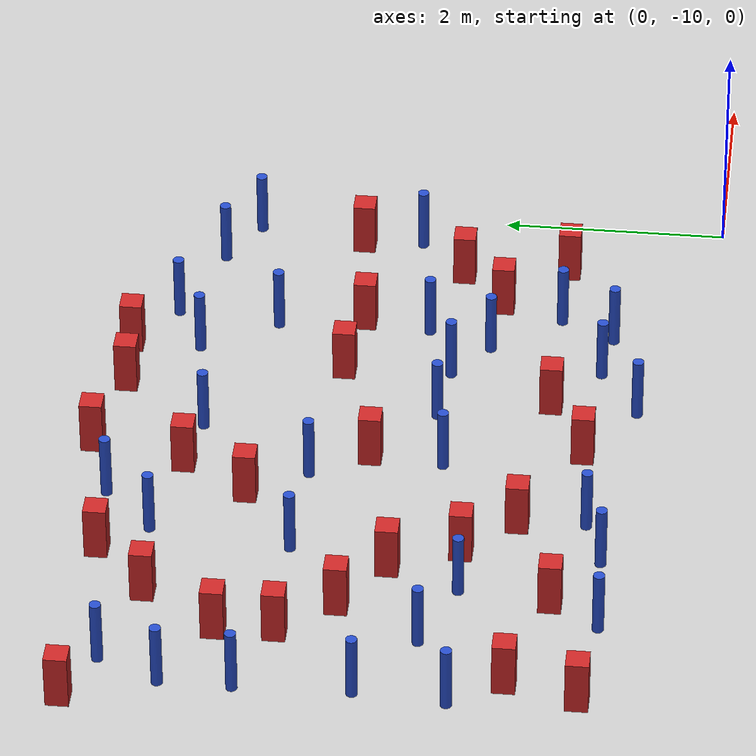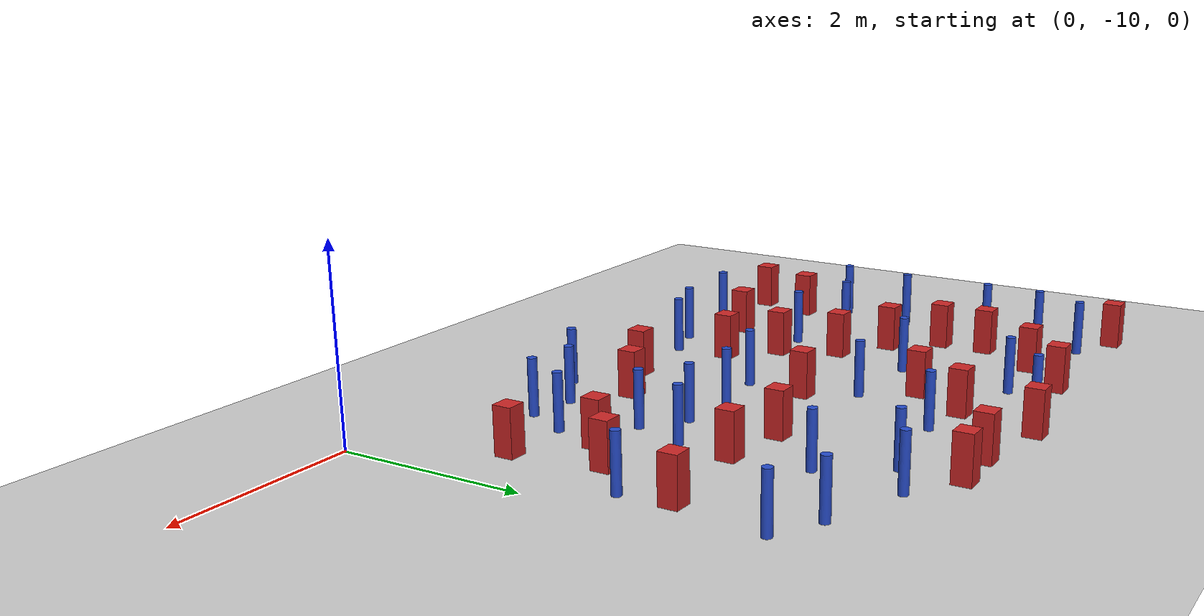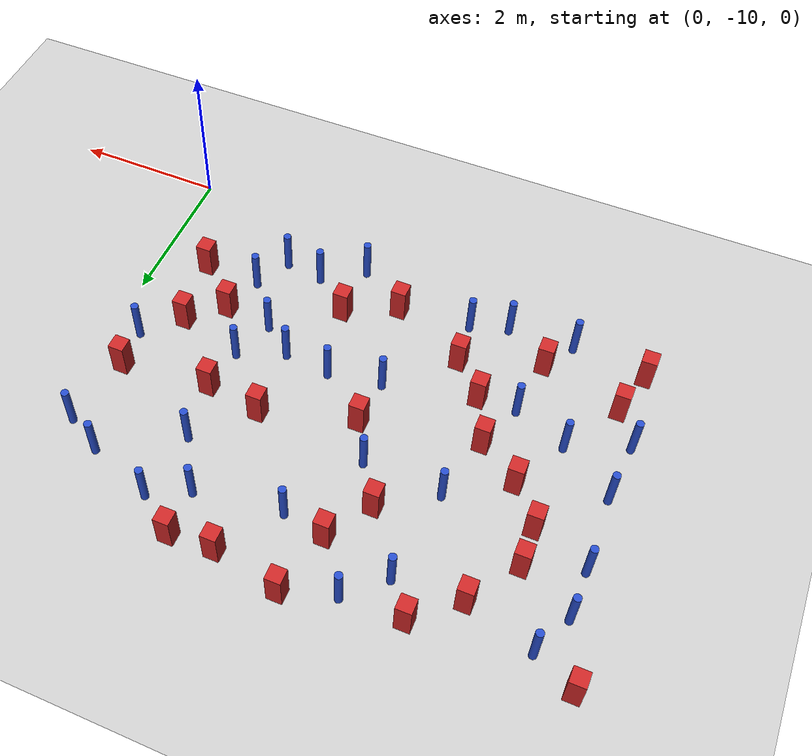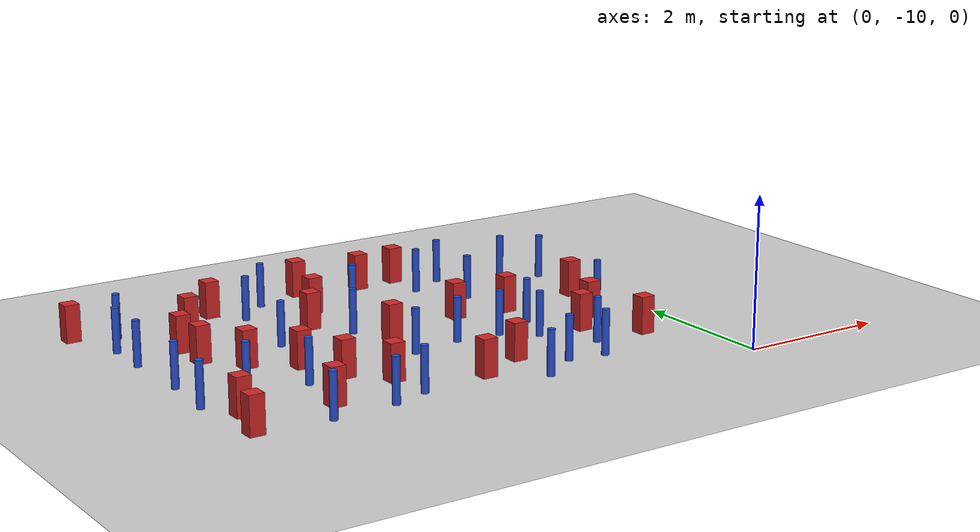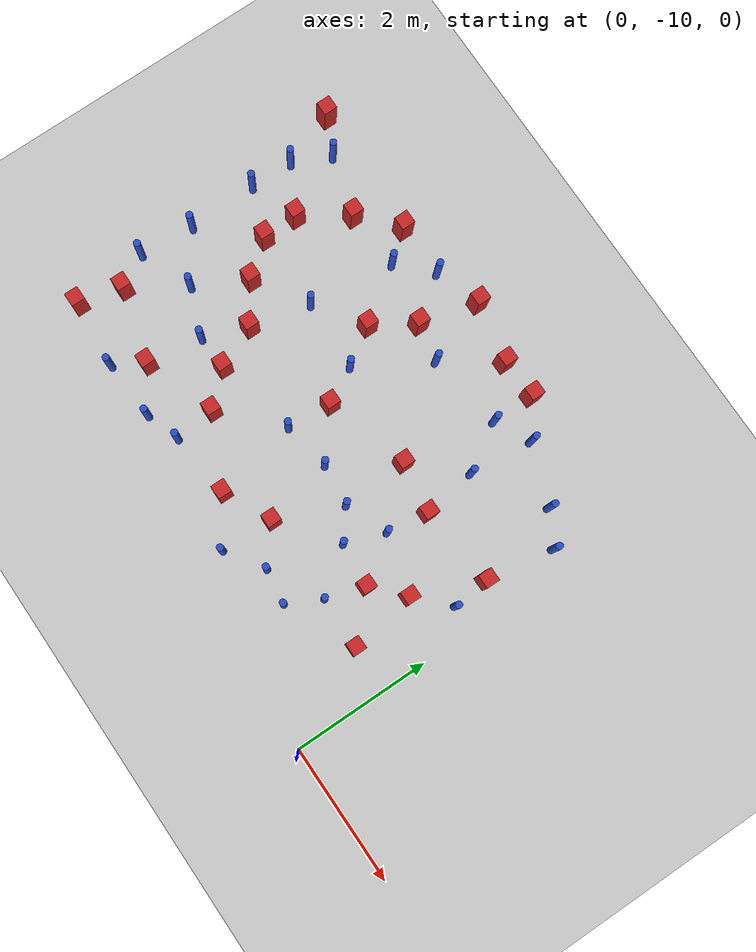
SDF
<sdf version="1.6">
 <world name="default">
  <model name="ground_plane">
   <static>1</static>
   <link name="link">
    <collision name="collision">
     <geometry><plane><normal>0 0 1</normal><size>100 100</size></plane></geometry>
     <surface><friction><ode><mu>100</mu><mu2>50</mu2></ode></friction></surface>
    </collision>
    <visual name="visual">
     <cast_shadows>0</cast_shadows>
     <geometry><plane><normal>0 0 1</normal><size>100 100</size></plane></geometry>
     <material>
      <ambient>1.0 1.0 1.0 1.0</ambient>
      <diffuse>0.8 0.8 0.8 1.0</diffuse>
      <specular>0.01 0.01 0.01 1.000000</specular>
     </material>
    </visual>
   </link>
  </model>
  <model name="pole_obstacle6">
   <static>true</static>
   <pose>-6.67259514434 -7.26067881693 -9.47619616065e-06 5.49618799737e-07 2.36310414037e-07 -1.55090534814e-07</pose>
   <link name="link">
    <pose>0 0 0.3 0 -0 0</pose>
    <inertial>
     <mass>1</mass>
     <inertia><ixx>0.145833</ixx><ixy>0</ixy><ixz>0</ixz><iyy>0.145833</iyy><iyz>0</iyz><izz>0.125</izz></inertia>
    </inertial>
    <collision name="collision">
     <geometry><cylinder><radius>0.05</radius><length>.6</length></cylinder></geometry>
    </collision>
    <visual name="visual">
     <geometry><cylinder><radius>0.05</radius><length>.6</length></cylinder></geometry>
     <material>
      <script><name>Gazebo/Blue</name><uri>file://media/materials/scripts/gazebo.material</uri></script>
     </material>
    </visual>
   </link>
  </model>
  <model name="pole_obstacle14">
   <static>true</static>
   <pose>-3.8241816231 -6.57870441481 -9.47619616065e-06 5.49618799738e-07 2.3631041406e-07 -1.55090534801e-07</pose>
   <link name="link">
    <pose>0 0 0.3 0 -0 0</pose>
    <inertial>
     <mass>1</mass>
     <inertia><ixx>0.145833</ixx><ixy>0</ixy><ixz>0</ixz><iyy>0.145833</iyy><iyz>0</iyz><izz>0.125</izz></inertia>
    </inertial>
    <collision name="collision">
     <geometry><cylinder><radius>0.05</radius><length>.6</length></cylinder></geometry>
    </collision>
    <visual name="visual">
     <geometry><cylinder><radius>0.05</radius><length>.6</length></cylinder></geometry>
     <material>
      <script><name>Gazebo/Blue</name><uri>file://media/materials/scripts/gazebo.material</uri></script>
     </material>
    </visual>
   </link>
  </model>
  <model name="pole_obstacle17">
   <static>true</static>
   <pose>-2.89915703418 -7.61839342395 -9.47619616065e-06 5.49618799738e-07 2.3631041406e-07 -1.55090534801e-07</pose>
   <link name="link">
    <pose>0 0 0.3 0 -0 0</pose>
    <inertial>
     <mass>1</mass>
     <inertia><ixx>0.145833</ixx><ixy>0</ixy><ixz>0</ixz><iyy>0.145833</iyy><iyz>0</iyz><izz>0.125</izz></inertia>
    </inertial>
    <collision name="collision">
     <geometry><cylinder><radius>0.05</radius><length>.6</length></cylinder></geometry>
    </collision>
    <visual name="visual">
     <geometry><cylinder><radius>0.05</radius><length>.6</length></cylinder></geometry>
     <material>
      <script><name>Gazebo/Blue</name><uri>file://media/materials/scripts/gazebo.material</uri></script>
     </material>
    </visual>
   </link>
  </model>
  <model name="pole_obstacle18">
   <static>true</static>
   <pose>-1.88941581441 -8.00734573347 -9.47619616065e-06 5.49618799737e-07 2.36310414013e-07 -1.55090534827e-07</pose>
   <link name="link">
    <pose>0 0 0.3 0 -0 0</pose>
    <inertial>
     <mass>1</mass>
     <inertia><ixx>0.145833</ixx><ixy>0</ixy><ixz>0</ixz><iyy>0.145833</iyy><iyz>0</iyz><izz>0.125</izz></inertia>
    </inertial>
    <collision name="collision">
     <geometry><cylinder><radius>0.05</radius><length>.6</length></cylinder></geometry>
    </collision>
    <visual name="visual">
     <geometry><cylinder><radius>0.05</radius><length>.6</length></cylinder></geometry>
     <material>
      <script><name>Gazebo/Blue</name><uri>file://media/materials/scripts/gazebo.material</uri></script>
     </material>
    </visual>
   </link>
  </model>
  <model name="square_post_obstacle14">
   <static>true</static>
   <pose>-3.79969899994 -5.47308644981 -6.11067671241e-07 -5.50515727128e-06 -8.79689657224e-07 2.37013304536e-05</pose>
   <link name="link">
    <pose>0 0 0.25 0 -0 0</pose>
    <inertial>
     <mass>100</mass>
     <inertia>
      <ixx>0.166667</ixx>
      <ixy>0</ixy>
      <ixz>0</ixz>
      <iyy>0.166667</iyy>
      <iyz>0</iyz>
      <izz>0.166667</izz>
     </inertia>
    </inertial>
    <collision name="collision"><geometry><box><size>.2 .2 .5</size></box></geometry></collision>
    <visual name="visual">
     <geometry><box><size>.2 .2 .5</size></box></geometry>
     <material>
      <script><name>Gazebo/Red</name><uri>file://media/materials/scripts/gazebo.material</uri></script>
     </material>
    </visual>
   </link>
  </model>
  <model name="pole_obstacle19">
   <static>true</static>
   <pose>-4.24836645206 -4.84858054004 -9.47619616065e-06 5.49618799737e-07 2.36310414037e-07 -1.55090534814e-07</pose>
   <link name="link">
    <pose>0 0 0.3 0 -0 0</pose>
    <inertial>
     <mass>1</mass>
     <inertia><ixx>0.145833</ixx><ixy>0</ixy><ixz>0</ixz><iyy>0.145833</iyy><iyz>0</iyz><izz>0.125</izz></inertia>
    </inertial>
    <collision name="collision">
     <geometry><cylinder><radius>0.05</radius><length>.6</length></cylinder></geometry>
    </collision>
    <visual name="visual">
     <geometry><cylinder><radius>0.05</radius><length>.6</length></cylinder></geometry>
     <material>
      <script><name>Gazebo/Blue</name><uri>file://media/materials/scripts/gazebo.material</uri></script>
     </material>
    </visual>
   </link>
  </model>
  <model name="pole_obstacle20">
   <static>true</static>
   <pose>-5.65267209662 -9.24675906609 -9.47619616065e-06 5.49618799737e-07 2.36310414065e-07 -1.55090534796e-07</pose>
   <link name="link">
    <pose>0 0 0.3 0 -0 0</pose>
    <inertial>
     <mass>1</mass>
     <inertia><ixx>0.145833</ixx><ixy>0</ixy><ixz>0</ixz><iyy>0.145833</iyy><iyz>0</iyz><izz>0.125</izz></inertia>
    </inertial>
    <collision name="collision">
     <geometry><cylinder><radius>0.05</radius><length>.6</length></cylinder></geometry>
    </collision>
    <visual name="visual">
     <geometry><cylinder><radius>0.05</radius><length>.6</length></cylinder></geometry>
     <material>
      <script><name>Gazebo/Blue</name><uri>file://media/materials/scripts/gazebo.material</uri></script>
     </material>
    </visual>
   </link>
  </model>
  <model name="pole_obstacle24">
   <static>true</static>
   <pose>-1.66826216013 -9.10371279603 -9.47619616065e-06 5.49618799737e-07 2.36310414046e-07 -1.55090534809e-07</pose>
   <link name="link">
    <pose>0 0 0.3 0 -0 0</pose>
    <inertial>
     <mass>1</mass>
     <inertia><ixx>0.145833</ixx><ixy>0</ixy><ixz>0</ixz><iyy>0.145833</iyy><iyz>0</iyz><izz>0.125</izz></inertia>
    </inertial>
    <collision name="collision">
     <geometry><cylinder><radius>0.05</radius><length>.6</length></cylinder></geometry>
    </collision>
    <visual name="visual">
     <geometry><cylinder><radius>0.05</radius><length>.6</length></cylinder></geometry>
     <material>
      <script><name>Gazebo/Blue</name><uri>file://media/materials/scripts/gazebo.material</uri></script>
     </material>
    </visual>
   </link>
  </model>
  <model name="pole_obstacle26">
   <static>true</static>
   <pose>-3.23937369056 -5.57305157557 -9.47619616065e-06 5.49618799738e-07 2.3631041406e-07 -1.55090534801e-07</pose>
   <link name="link">
    <pose>0 0 0.3 0 -0 0</pose>
    <inertial>
     <mass>1</mass>
     <inertia><ixx>0.145833</ixx><ixy>0</ixy><ixz>0</ixz><iyy>0.145833</iyy><iyz>0</iyz><izz>0.125</izz></inertia>
    </inertial>
    <collision name="collision">
     <geometry><cylinder><radius>0.05</radius><length>.6</length></cylinder></geometry>
    </collision>
    <visual name="visual">
     <geometry><cylinder><radius>0.05</radius><length>.6</length></cylinder></geometry>
     <material>
      <script><name>Gazebo/Blue</name><uri>file://media/materials/scripts/gazebo.material</uri></script>
     </material>
    </visual>
   </link>
  </model>
  <model name="square_post_obstacle30">
   <static>true</static>
   <pose>-3.35750983752 -8.94683915711 -6.11067671241e-07 -5.50515727128e-06 -8.79689657224e-07 2.37013304536e-05</pose>
   <link name="link">
    <pose>0 0 0.25 0 -0 0</pose>
    <inertial>
     <mass>100</mass>
     <inertia>
      <ixx>0.166667</ixx>
      <ixy>0</ixy>
      <ixz>0</ixz>
      <iyy>0.166667</iyy>
      <iyz>0</iyz>
      <izz>0.166667</izz>
     </inertia>
    </inertial>
    <collision name="collision"><geometry><box><size>.2 .2 .5</size></box></geometry></collision>
    <visual name="visual">
     <geometry><box><size>.2 .2 .5</size></box></geometry>
     <material>
      <script><name>Gazebo/Red</name><uri>file://media/materials/scripts/gazebo.material</uri></script>
     </material>
    </visual>
   </link>
  </model>
  <model name="pole_obstacle38">
   <static>true</static>
   <pose>-1.71604727586 -6.06814632395 -9.47619616065e-06 5.49618799737e-07 2.36310414061e-07 -1.550905348e-07</pose>
   <link name="link">
    <pose>0 0 0.3 0 -0 0</pose>
    <inertial>
     <mass>1</mass>
     <inertia><ixx>0.145833</ixx><ixy>0</ixy><ixz>0</ixz><iyy>0.145833</iyy><iyz>0</iyz><izz>0.125</izz></inertia>
    </inertial>
    <collision name="collision">
     <geometry><cylinder><radius>0.05</radius><length>.6</length></cylinder></geometry>
    </collision>
    <visual name="visual">
     <geometry><cylinder><radius>0.05</radius><length>.6</length></cylinder></geometry>
     <material>
      <script><name>Gazebo/Blue</name><uri>file://media/materials/scripts/gazebo.material</uri></script>
     </material>
    </visual>
   </link>
  </model>
  <model name="pole_obstacle40">
   <static>true</static>
   <pose>-1.62080458927 -5.14639757813 -9.47619616065e-06 5.49618799737e-07 2.36310414061e-07 -1.550905348e-07</pose>
   <link name="link">
    <pose>0 0 0.3 0 -0 0</pose>
    <inertial>
     <mass>1</mass>
     <inertia><ixx>0.145833</ixx><ixy>0</ixy><ixz>0</ixz><iyy>0.145833</iyy><iyz>0</iyz><izz>0.125</izz></inertia>
    </inertial>
    <collision name="collision">
     <geometry><cylinder><radius>0.05</radius><length>.6</length></cylinder></geometry>
    </collision>
    <visual name="visual">
     <geometry><cylinder><radius>0.05</radius><length>.6</length></cylinder></geometry>
     <material>
      <script><name>Gazebo/Blue</name><uri>file://media/materials/scripts/gazebo.material</uri></script>
     </material>
    </visual>
   </link>
  </model>
  <model name="pole_obstacle51">
   <static>true</static>
   <pose>-2.12303213821 -5.40189653144 -9.47619616065e-06 5.49618799738e-07 2.3631041406e-07 -1.55090534801e-07</pose>
   <link name="link">
    <pose>0 0 0.3 0 -0 0</pose>
    <inertial>
     <mass>1</mass>
     <inertia><ixx>0.145833</ixx><ixy>0</ixy><ixz>0</ixz><iyy>0.145833</iyy><iyz>0</iyz><izz>0.125</izz></inertia>
    </inertial>
    <collision name="collision">
     <geometry><cylinder><radius>0.05</radius><length>.6</length></cylinder></geometry>
    </collision>
    <visual name="visual">
     <geometry><cylinder><radius>0.05</radius><length>.6</length></cylinder></geometry>
     <material>
      <script><name>Gazebo/Blue</name><uri>file://media/materials/scripts/gazebo.material</uri></script>
     </material>
    </visual>
   </link>
  </model>
  <model name="square_post_obstacle45">
   <static>true</static>
   <pose>-2.34434877915 -6.73400630385 -6.11067671241e-07 -5.50515727128e-06 -8.79689657224e-07 2.37013304536e-05</pose>
   <link name="link">
    <pose>0 0 0.25 0 -0 0</pose>
    <inertial>
     <mass>100</mass>
     <inertia>
      <ixx>0.166667</ixx>
      <ixy>0</ixy>
      <ixz>0</ixz>
      <iyy>0.166667</iyy>
      <iyz>0</iyz>
      <izz>0.166667</izz>
     </inertia>
    </inertial>
    <collision name="collision"><geometry><box><size>.2 .2 .5</size></box></geometry></collision>
    <visual name="visual">
     <geometry><box><size>.2 .2 .5</size></box></geometry>
     <material>
      <script><name>Gazebo/Red</name><uri>file://media/materials/scripts/gazebo.material</uri></script>
     </material>
    </visual>
   </link>
  </model>
  <model name="square_post_obstacle53">
   <static>true</static>
   <pose>-0.687866372086 -8.63134660337 -6.11067671241e-07 -5.50515727128e-06 -8.79689657224e-07 2.37013304536e-05</pose>
   <link name="link">
    <pose>0 0 0.25 0 -0 0</pose>
    <inertial>
     <mass>100</mass>
     <inertia>
      <ixx>0.166667</ixx>
      <ixy>0</ixy>
      <ixz>0</ixz>
      <iyy>0.166667</iyy>
      <iyz>0</iyz>
      <izz>0.166667</izz>
     </inertia>
    </inertial>
    <collision name="collision"><geometry><box><size>.2 .2 .5</size></box></geometry></collision>
    <visual name="visual">
     <geometry><box><size>.2 .2 .5</size></box></geometry>
     <material>
      <script><name>Gazebo/Red</name><uri>file://media/materials/scripts/gazebo.material</uri></script>
     </material>
    </visual>
   </link>
  </model>
  <model name="square_post_obstacle54">
   <static>true</static>
   <pose>-2.13394723603 -4.78786241825 -6.11067671241e-07 -5.50515727128e-06 -8.79689657224e-07 2.37013304536e-05</pose>
   <link name="link">
    <pose>0 0 0.25 0 -0 0</pose>
    <inertial>
     <mass>100</mass>
     <inertia>
      <ixx>0.166667</ixx>
      <ixy>0</ixy>
      <ixz>0</ixz>
      <iyy>0.166667</iyy>
      <iyz>0</iyz>
      <izz>0.166667</izz>
     </inertia>
    </inertial>
    <collision name="collision"><geometry><box><size>.2 .2 .5</size></box></geometry></collision>
    <visual name="visual">
     <geometry><box><size>.2 .2 .5</size></box></geometry>
     <material>
      <script><name>Gazebo/Red</name><uri>file://media/materials/scripts/gazebo.material</uri></script>
     </material>
    </visual>
   </link>
  </model>
  <model name="square_post_obstacle70">
   <static>true</static>
   <pose>-1.61151347146 -6.8454436354 -6.11067671241e-07 -5.50515727128e-06 -8.79689657224e-07 2.37013304536e-05</pose>
   <link name="link">
    <pose>0 0 0.25 0 -0 0</pose>
    <inertial>
     <mass>100</mass>
     <inertia>
      <ixx>0.166667</ixx>
      <ixy>0</ixy>
      <ixz>0</ixz>
      <iyy>0.166667</iyy>
      <iyz>0</iyz>
      <izz>0.166667</izz>
     </inertia>
    </inertial>
    <collision name="collision"><geometry><box><size>.2 .2 .5</size></box></geometry></collision>
    <visual name="visual">
     <geometry><box><size>.2 .2 .5</size></box></geometry>
     <material>
      <script><name>Gazebo/Red</name><uri>file://media/materials/scripts/gazebo.material</uri></script>
     </material>
    </visual>
   </link>
  </model>
  <model name="pole_obstacle84">
   <static>true</static>
   <pose>-3.59718115362 -7.73407096774 -9.47619616065e-06 5.49618799738e-07 2.3631041406e-07 -1.55090534801e-07</pose>
   <link name="link">
    <pose>0 0 0.3 0 -0 0</pose>
    <inertial>
     <mass>1</mass>
     <inertia><ixx>0.145833</ixx><ixy>0</ixy><ixz>0</ixz><iyy>0.145833</iyy><iyz>0</iyz><izz>0.125</izz></inertia>
    </inertial>
    <collision name="collision">
     <geometry><cylinder><radius>0.05</radius><length>.6</length></cylinder></geometry>
    </collision>
    <visual name="visual">
     <geometry><cylinder><radius>0.05</radius><length>.6</length></cylinder></geometry>
     <material>
      <script><name>Gazebo/Blue</name><uri>file://media/materials/scripts/gazebo.material</uri></script>
     </material>
    </visual>
   </link>
  </model>
  <model name="pole_obstacle87">
   <static>true</static>
   <pose>-1.69025322902 -7.43966967537 -9.47619616065e-06 5.49618799737e-07 2.36310414061e-07 -1.550905348e-07</pose>
   <link name="link">
    <pose>0 0 0.3 0 -0 0</pose>
    <inertial>
     <mass>1</mass>
     <inertia><ixx>0.145833</ixx><ixy>0</ixy><ixz>0</ixz><iyy>0.145833</iyy><iyz>0</iyz><izz>0.125</izz></inertia>
    </inertial>
    <collision name="collision">
     <geometry><cylinder><radius>0.05</radius><length>.6</length></cylinder></geometry>
    </collision>
    <visual name="visual">
     <geometry><cylinder><radius>0.05</radius><length>.6</length></cylinder></geometry>
     <material>
      <script><name>Gazebo/Blue</name><uri>file://media/materials/scripts/gazebo.material</uri></script>
     </material>
    </visual>
   </link>
  </model>
  <model name="square_post_obstacle76">
   <static>true</static>
   <pose>-0.835735062315 -7.67884509482 -6.11067671241e-07 -5.50515727128e-06 -8.79689657224e-07 2.37013304536e-05</pose>
   <link name="link">
    <pose>0 0 0.25 0 -0 0</pose>
    <inertial>
     <mass>100</mass>
     <inertia>
      <ixx>0.166667</ixx>
      <ixy>0</ixy>
      <ixz>0</ixz>
      <iyy>0.166667</iyy>
      <iyz>0</iyz>
      <izz>0.166667</izz>
     </inertia>
    </inertial>
    <collision name="collision"><geometry><box><size>.2 .2 .5</size></box></geometry></collision>
    <visual name="visual">
     <geometry><box><size>.2 .2 .5</size></box></geometry>
     <material>
      <script><name>Gazebo/Red</name><uri>file://media/materials/scripts/gazebo.material</uri></script>
     </material>
    </visual>
   </link>
  </model>
  <model name="pole_obstacle89">
   <static>true</static>
   <pose>-4.79441096193 -9.20662065872 -9.47619616065e-06 5.49618799737e-07 2.36310414065e-07 -1.55090534796e-07</pose>
   <link name="link">
    <pose>0 0 0.3 0 -0 0</pose>
    <inertial>
     <mass>1</mass>
     <inertia><ixx>0.145833</ixx><ixy>0</ixy><ixz>0</ixz><iyy>0.145833</iyy><iyz>0</iyz><izz>0.125</izz></inertia>
    </inertial>
    <collision name="collision">
     <geometry><cylinder><radius>0.05</radius><length>.6</length></cylinder></geometry>
    </collision>
    <visual name="visual">
     <geometry><cylinder><radius>0.05</radius><length>.6</length></cylinder></geometry>
     <material>
      <script><name>Gazebo/Blue</name><uri>file://media/materials/scripts/gazebo.material</uri></script>
     </material>
    </visual>
   </link>
  </model>
  <model name="square_post_obstacle91">
   <static>true</static>
   <pose>-6.45381833306 -8.51735702078 -6.11067671241e-07 -5.50515727128e-06 -8.79689657224e-07 2.37013304536e-05</pose>
   <link name="link">
    <pose>0 0 0.25 0 -0 0</pose>
    <inertial>
     <mass>100</mass>
     <inertia>
      <ixx>0.166667</ixx>
      <ixy>0</ixy>
      <ixz>0</ixz>
      <iyy>0.166667</iyy>
      <iyz>0</iyz>
      <izz>0.166667</izz>
     </inertia>
    </inertial>
    <collision name="collision"><geometry><box><size>.2 .2 .5</size></box></geometry></collision>
    <visual name="visual">
     <geometry><box><size>.2 .2 .5</size></box></geometry>
     <material>
      <script><name>Gazebo/Red</name><uri>file://media/materials/scripts/gazebo.material</uri></script>
     </material>
    </visual>
   </link>
  </model>
  <model name="square_post_obstacle96">
   <static>true</static>
   <pose>-4.36088909401 -8.45337037237 -6.11067671241e-07 -5.50515727128e-06 -8.79689657224e-07 2.37013304536e-05</pose>
   <link name="link">
    <pose>0 0 0.25 0 -0 0</pose>
    <inertial>
     <mass>100</mass>
     <inertia>
      <ixx>0.166667</ixx>
      <ixy>0</ixy>
      <ixz>0</ixz>
      <iyy>0.166667</iyy>
      <iyz>0</iyz>
      <izz>0.166667</izz>
     </inertia>
    </inertial>
    <collision name="collision"><geometry><box><size>.2 .2 .5</size></box></geometry></collision>
    <visual name="visual">
     <geometry><box><size>.2 .2 .5</size></box></geometry>
     <material>
      <script><name>Gazebo/Red</name><uri>file://media/materials/scripts/gazebo.material</uri></script>
     </material>
    </visual>
   </link>
  </model>
  <model name="square_post_obstacle97">
   <static>true</static>
   <pose>-5.58892640179 -7.01263452982 -6.11067671241e-07 -5.50515727128e-06 -8.79689657224e-07 2.37013304536e-05</pose>
   <link name="link">
    <pose>0 0 0.25 0 -0 0</pose>
    <inertial>
     <mass>100</mass>
     <inertia>
      <ixx>0.166667</ixx>
      <ixy>0</ixy>
      <ixz>0</ixz>
      <iyy>0.166667</iyy>
      <iyz>0</iyz>
      <izz>0.166667</izz>
     </inertia>
    </inertial>
    <collision name="collision"><geometry><box><size>.2 .2 .5</size></box></geometry></collision>
    <visual name="visual">
     <geometry><box><size>.2 .2 .5</size></box></geometry>
     <material>
      <script><name>Gazebo/Red</name><uri>file://media/materials/scripts/gazebo.material</uri></script>
     </material>
    </visual>
   </link>
  </model>
  <model name="pole_obstacle106">
   <static>true</static>
   <pose>-0.277600137121 -5.74232115357 -9.47619616065e-06 5.49618799738e-07 2.36310414067e-07 -1.55090534795e-07</pose>
   <link name="link">
    <pose>0 0 0.3 0 -0 0</pose>
    <inertial>
     <mass>1</mass>
     <inertia><ixx>0.145833</ixx><ixy>0</ixy><ixz>0</ixz><iyy>0.145833</iyy><iyz>0</iyz><izz>0.125</izz></inertia>
    </inertial>
    <collision name="collision">
     <geometry><cylinder><radius>0.05</radius><length>.6</length></cylinder></geometry>
    </collision>
    <visual name="visual">
     <geometry><cylinder><radius>0.05</radius><length>.6</length></cylinder></geometry>
     <material>
      <script><name>Gazebo/Blue</name><uri>file://media/materials/scripts/gazebo.material</uri></script>
     </material>
    </visual>
   </link>
  </model>
  <model name="pole_obstacle111">
   <static>true</static>
   <pose>-5.28132432684 -8.02336577595 -9.47619616065e-06 5.49618799737e-07 2.36310414032e-07 -1.55090534819e-07</pose>
   <link name="link">
    <pose>0 0 0.3 0 -0 0</pose>
    <inertial>
     <mass>1</mass>
     <inertia><ixx>0.145833</ixx><ixy>0</ixy><ixz>0</ixz><iyy>0.145833</iyy><iyz>0</iyz><izz>0.125</izz></inertia>
    </inertial>
    <collision name="collision">
     <geometry><cylinder><radius>0.05</radius><length>.6</length></cylinder></geometry>
    </collision>
    <visual name="visual">
     <geometry><cylinder><radius>0.05</radius><length>.6</length></cylinder></geometry>
     <material>
      <script><name>Gazebo/Blue</name><uri>file://media/materials/scripts/gazebo.material</uri></script>
     </material>
    </visual>
   </link>
  </model>
  <model name="square_post_obstacle108">
   <static>true</static>
   <pose>-4.16547622679 -6.0620674504 -6.11067671241e-07 -5.50515727128e-06 -8.79689657224e-07 2.37013304536e-05</pose>
   <link name="link">
    <pose>0 0 0.25 0 -0 0</pose>
    <inertial>
     <mass>100</mass>
     <inertia>
      <ixx>0.166667</ixx>
      <ixy>0</ixy>
      <ixz>0</ixz>
      <iyy>0.166667</iyy>
      <iyz>0</iyz>
      <izz>0.166667</izz>
     </inertia>
    </inertial>
    <collision name="collision"><geometry><box><size>.2 .2 .5</size></box></geometry></collision>
    <visual name="visual">
     <geometry><box><size>.2 .2 .5</size></box></geometry>
     <material>
      <script><name>Gazebo/Red</name><uri>file://media/materials/scripts/gazebo.material</uri></script>
     </material>
    </visual>
   </link>
  </model>
  <model name="pole_obstacle115">
   <static>true</static>
   <pose>-6.6960738079 -6.25245536714 -9.47619616065e-06 5.49618799737e-07 2.36310414037e-07 -1.55090534814e-07</pose>
   <link name="link">
    <pose>0 0 0.3 0 -0 0</pose>
    <inertial>
     <mass>1</mass>
     <inertia><ixx>0.145833</ixx><ixy>0</ixy><ixz>0</ixz><iyy>0.145833</iyy><iyz>0</iyz><izz>0.125</izz></inertia>
    </inertial>
    <collision name="collision">
     <geometry><cylinder><radius>0.05</radius><length>.6</length></cylinder></geometry>
    </collision>
    <visual name="visual">
     <geometry><cylinder><radius>0.05</radius><length>.6</length></cylinder></geometry>
     <material>
      <script><name>Gazebo/Blue</name><uri>file://media/materials/scripts/gazebo.material</uri></script>
     </material>
    </visual>
   </link>
  </model>
  <model name="pole_obstacle123">
   <static>true</static>
   <pose>-5.97340911215 -7.74634717104 -9.47619616065e-06 5.49618799737e-07 2.36310414037e-07 -1.55090534814e-07</pose>
   <link name="link">
    <pose>0 0 0.3 0 -0 0</pose>
    <inertial>
     <mass>1</mass>
     <inertia><ixx>0.145833</ixx><ixy>0</ixy><ixz>0</ixz><iyy>0.145833</iyy><iyz>0</iyz><izz>0.125</izz></inertia>
    </inertial>
    <collision name="collision">
     <geometry><cylinder><radius>0.05</radius><length>.6</length></cylinder></geometry>
    </collision>
    <visual name="visual">
     <geometry><cylinder><radius>0.05</radius><length>.6</length></cylinder></geometry>
     <material>
      <script><name>Gazebo/Blue</name><uri>file://media/materials/scripts/gazebo.material</uri></script>
     </material>
    </visual>
   </link>
  </model>
  <model name="square_post_obstacle123">
   <static>true</static>
   <pose>-4.7787054068 -8.00332374333 -6.11067671241e-07 -5.50515727128e-06 -8.79689657224e-07 2.37013304536e-05</pose>
   <link name="link">
    <pose>0 0 0.25 0 -0 0</pose>
    <inertial>
     <mass>100</mass>
     <inertia>
      <ixx>0.166667</ixx>
      <ixy>0</ixy>
      <ixz>0</ixz>
      <iyy>0.166667</iyy>
      <iyz>0</iyz>
      <izz>0.166667</izz>
     </inertia>
    </inertial>
    <collision name="collision"><geometry><box><size>.2 .2 .5</size></box></geometry></collision>
    <visual name="visual">
     <geometry><box><size>.2 .2 .5</size></box></geometry>
     <material>
      <script><name>Gazebo/Red</name><uri>file://media/materials/scripts/gazebo.material</uri></script>
     </material>
    </visual>
   </link>
  </model>
  <model name="square_post_obstacle125">
   <static>true</static>
   <pose>-5.97672476204 -6.52950876441 -6.11067671241e-07 -5.50515727128e-06 -8.79689657224e-07 2.37013304536e-05</pose>
   <link name="link">
    <pose>0 0 0.25 0 -0 0</pose>
    <inertial>
     <mass>100</mass>
     <inertia>
      <ixx>0.166667</ixx>
      <ixy>0</ixy>
      <ixz>0</ixz>
      <iyy>0.166667</iyy>
      <iyz>0</iyz>
      <izz>0.166667</izz>
     </inertia>
    </inertial>
    <collision name="collision"><geometry><box><size>.2 .2 .5</size></box></geometry></collision>
    <visual name="visual">
     <geometry><box><size>.2 .2 .5</size></box></geometry>
     <material>
      <script><name>Gazebo/Red</name><uri>file://media/materials/scripts/gazebo.material</uri></script>
     </material>
    </visual>
   </link>
  </model>
  <model name="square_post_obstacle126">
   <static>true</static>
   <pose>-5.38925964734 -8.81848186278 -6.11067671241e-07 -5.50515727128e-06 -8.79689657224e-07 2.37013304536e-05</pose>
   <link name="link">
    <pose>0 0 0.25 0 -0 0</pose>
    <inertial>
     <mass>100</mass>
     <inertia>
      <ixx>0.166667</ixx>
      <ixy>0</ixy>
      <ixz>0</ixz>
      <iyy>0.166667</iyy>
      <iyz>0</iyz>
      <izz>0.166667</izz>
     </inertia>
    </inertial>
    <collision name="collision"><geometry><box><size>.2 .2 .5</size></box></geometry></collision>
    <visual name="visual">
     <geometry><box><size>.2 .2 .5</size></box></geometry>
     <material>
      <script><name>Gazebo/Red</name><uri>file://media/materials/scripts/gazebo.material</uri></script>
     </material>
    </visual>
   </link>
  </model>
  <model name="square_post_obstacle133">
   <static>true</static>
   <pose>-3.59394222842 -4.63665619219 -6.11067671241e-07 -5.50515727128e-06 -8.79689657224e-07 2.37013304536e-05</pose>
   <link name="link">
    <pose>0 0 0.25 0 -0 0</pose>
    <inertial>
     <mass>100</mass>
     <inertia>
      <ixx>0.166667</ixx>
      <ixy>0</ixy>
      <ixz>0</ixz>
      <iyy>0.166667</iyy>
      <iyz>0</iyz>
      <izz>0.166667</izz>
     </inertia>
    </inertial>
    <collision name="collision"><geometry><box><size>.2 .2 .5</size></box></geometry></collision>
    <visual name="visual">
     <geometry><box><size>.2 .2 .5</size></box></geometry>
     <material>
      <script><name>Gazebo/Red</name><uri>file://media/materials/scripts/gazebo.material</uri></script>
     </material>
    </visual>
   </link>
  </model>
  <model name="square_post_obstacle135">
   <static>true</static>
   <pose>-5.0463295013 -7.39350989102 -6.11067671241e-07 -5.50515727128e-06 -8.79689657224e-07 2.37013304536e-05</pose>
   <link name="link">
    <pose>0 0 0.25 0 -0 0</pose>
    <inertial>
     <mass>100</mass>
     <inertia>
      <ixx>0.166667</ixx>
      <ixy>0</ixy>
      <ixz>0</ixz>
      <iyy>0.166667</iyy>
      <iyz>0</iyz>
      <izz>0.166667</izz>
     </inertia>
    </inertial>
    <collision name="collision"><geometry><box><size>.2 .2 .5</size></box></geometry></collision>
    <visual name="visual">
     <geometry><box><size>.2 .2 .5</size></box></geometry>
     <material>
      <script><name>Gazebo/Red</name><uri>file://media/materials/scripts/gazebo.material</uri></script>
     </material>
    </visual>
   </link>
  </model>
  <model name="pole_obstacle143">
   <static>true</static>
   <pose>-1.42601861109 -8.62001814199 -9.47619616065e-06 5.49618799737e-07 2.36310414046e-07 -1.55090534809e-07</pose>
   <link name="link">
    <pose>0 0 0.3 0 -0 0</pose>
    <inertial>
     <mass>1</mass>
     <inertia><ixx>0.145833</ixx><ixy>0</ixy><ixz>0</ixz><iyy>0.145833</iyy><iyz>0</iyz><izz>0.125</izz></inertia>
    </inertial>
    <collision name="collision">
     <geometry><cylinder><radius>0.05</radius><length>.6</length></cylinder></geometry>
    </collision>
    <visual name="visual">
     <geometry><cylinder><radius>0.05</radius><length>.6</length></cylinder></geometry>
     <material>
      <script><name>Gazebo/Blue</name><uri>file://media/materials/scripts/gazebo.material</uri></script>
     </material>
    </visual>
   </link>
  </model>
  <model name="square_post_obstacle144">
   <static>true</static>
   <pose>-1.26493335685 -8.07032782913 -6.11067671241e-07 -5.50515727128e-06 -8.79689657224e-07 2.37013304536e-05</pose>
   <link name="link">
    <pose>0 0 0.25 0 -0 0</pose>
    <inertial>
     <mass>100</mass>
     <inertia>
      <ixx>0.166667</ixx>
      <ixy>0</ixy>
      <ixz>0</ixz>
      <iyy>0.166667</iyy>
      <iyz>0</iyz>
      <izz>0.166667</izz>
     </inertia>
    </inertial>
    <collision name="collision"><geometry><box><size>.2 .2 .5</size></box></geometry></collision>
    <visual name="visual">
     <geometry><box><size>.2 .2 .5</size></box></geometry>
     <material>
      <script><name>Gazebo/Red</name><uri>file://media/materials/scripts/gazebo.material</uri></script>
     </material>
    </visual>
   </link>
  </model>
  <model name="pole_obstacle161">
   <static>true</static>
   <pose>-0.385407908699 -7.25083444417 -9.47619616065e-06 5.49618799737e-07 2.36310414065e-07 -1.55090534796e-07</pose>
   <link name="link">
    <pose>0 0 0.3 0 -0 0</pose>
    <inertial>
     <mass>1</mass>
     <inertia><ixx>0.145833</ixx><ixy>0</ixy><ixz>0</ixz><iyy>0.145833</iyy><iyz>0</iyz><izz>0.125</izz></inertia>
    </inertial>
    <collision name="collision">
     <geometry><cylinder><radius>0.05</radius><length>.6</length></cylinder></geometry>
    </collision>
    <visual name="visual">
     <geometry><cylinder><radius>0.05</radius><length>.6</length></cylinder></geometry>
     <material>
      <script><name>Gazebo/Blue</name><uri>file://media/materials/scripts/gazebo.material</uri></script>
     </material>
    </visual>
   </link>
  </model>
  <model name="square_post_obstacle154">
   <static>true</static>
   <pose>-6.61775089061 -9.14097785541 -6.11067671241e-07 -5.50515727128e-06 -8.79689657224e-07 2.37013304536e-05</pose>
   <link name="link">
    <pose>0 0 0.25 0 -0 0</pose>
    <inertial>
     <mass>100</mass>
     <inertia>
      <ixx>0.166667</ixx>
      <ixy>0</ixy>
      <ixz>0</ixz>
      <iyy>0.166667</iyy>
      <iyz>0</iyz>
      <izz>0.166667</izz>
     </inertia>
    </inertial>
    <collision name="collision"><geometry><box><size>.2 .2 .5</size></box></geometry></collision>
    <visual name="visual">
     <geometry><box><size>.2 .2 .5</size></box></geometry>
     <material>
      <script><name>Gazebo/Red</name><uri>file://media/materials/scripts/gazebo.material</uri></script>
     </material>
    </visual>
   </link>
  </model>
  <model name="pole_obstacle164">
   <static>true</static>
   <pose>-4.84716017293 -6.52835001128 -9.47619616065e-06 5.49618799737e-07 2.36310414037e-07 -1.55090534814e-07</pose>
   <link name="link">
    <pose>0 0 0.3 0 -0 0</pose>
    <inertial>
     <mass>1</mass>
     <inertia><ixx>0.145833</ixx><ixy>0</ixy><ixz>0</ixz><iyy>0.145833</iyy><iyz>0</iyz><izz>0.125</izz></inertia>
    </inertial>
    <collision name="collision">
     <geometry><cylinder><radius>0.05</radius><length>.6</length></cylinder></geometry>
    </collision>
    <visual name="visual">
     <geometry><cylinder><radius>0.05</radius><length>.6</length></cylinder></geometry>
     <material>
      <script><name>Gazebo/Blue</name><uri>file://media/materials/scripts/gazebo.material</uri></script>
     </material>
    </visual>
   </link>
  </model>
  <model name="pole_obstacle165">
   <static>true</static>
   <pose>-6.44062459915 -5.08283637053 -9.47619616065e-06 5.49618799737e-07 2.36310414037e-07 -1.55090534814e-07</pose>
   <link name="link">
    <pose>0 0 0.3 0 -0 0</pose>
    <inertial>
     <mass>1</mass>
     <inertia><ixx>0.145833</ixx><ixy>0</ixy><ixz>0</ixz><iyy>0.145833</iyy><iyz>0</iyz><izz>0.125</izz></inertia>
    </inertial>
    <collision name="collision">
     <geometry><cylinder><radius>0.05</radius><length>.6</length></cylinder></geometry>
    </collision>
    <visual name="visual">
     <geometry><cylinder><radius>0.05</radius><length>.6</length></cylinder></geometry>
     <material>
      <script><name>Gazebo/Blue</name><uri>file://media/materials/scripts/gazebo.material</uri></script>
     </material>
    </visual>
   </link>
  </model>
  <model name="pole_obstacle167">
   <static>true</static>
   <pose>-6.68835668705 -5.62214782196 -9.47619616065e-06 5.49618799737e-07 2.36310414037e-07 -1.55090534814e-07</pose>
   <link name="link">
    <pose>0 0 0.3 0 -0 0</pose>
    <inertial>
     <mass>1</mass>
     <inertia><ixx>0.145833</ixx><ixy>0</ixy><ixz>0</ixz><iyy>0.145833</iyy><iyz>0</iyz><izz>0.125</izz></inertia>
    </inertial>
    <collision name="collision">
     <geometry><cylinder><radius>0.05</radius><length>.6</length></cylinder></geometry>
    </collision>
    <visual name="visual">
     <geometry><cylinder><radius>0.05</radius><length>.6</length></cylinder></geometry>
     <material>
      <script><name>Gazebo/Blue</name><uri>file://media/materials/scripts/gazebo.material</uri></script>
     </material>
    </visual>
   </link>
  </model>
  <model name="square_post_obstacle168">
   <static>true</static>
   <pose>-6.96753409882 -4.83247192983 -6.11067671241e-07 -5.50515727128e-06 -8.79689657224e-07 2.37013304536e-05</pose>
   <link name="link">
    <pose>0 0 0.25 0 -0 0</pose>
    <inertial>
     <mass>100</mass>
     <inertia>
      <ixx>0.166667</ixx>
      <ixy>0</ixy>
      <ixz>0</ixz>
      <iyy>0.166667</iyy>
      <iyz>0</iyz>
      <izz>0.166667</izz>
     </inertia>
    </inertial>
    <collision name="collision"><geometry><box><size>.2 .2 .5</size></box></geometry></collision>
    <visual name="visual">
     <geometry><box><size>.2 .2 .5</size></box></geometry>
     <material>
      <script><name>Gazebo/Red</name><uri>file://media/materials/scripts/gazebo.material</uri></script>
     </material>
    </visual>
   </link>
  </model>
  <model name="square_post_obstacle172">
   <static>true</static>
   <pose>-2.6807089972 -8.61617977943 -6.11067671241e-07 -5.50515727128e-06 -8.79689657224e-07 2.37013304536e-05</pose>
   <link name="link">
    <pose>0 0 0.25 0 -0 0</pose>
    <inertial>
     <mass>100</mass>
     <inertia>
      <ixx>0.166667</ixx>
      <ixy>0</ixy>
      <ixz>0</ixz>
      <iyy>0.166667</iyy>
      <iyz>0</iyz>
      <izz>0.166667</izz>
     </inertia>
    </inertial>
    <collision name="collision"><geometry><box><size>.2 .2 .5</size></box></geometry></collision>
    <visual name="visual">
     <geometry><box><size>.2 .2 .5</size></box></geometry>
     <material>
      <script><name>Gazebo/Red</name><uri>file://media/materials/scripts/gazebo.material</uri></script>
     </material>
    </visual>
   </link>
  </model>
  <model name="square_post_obstacle174">
   <static>true</static>
   <pose>-5.56259424693 -5.34986486331 -6.11067671241e-07 -5.50515727128e-06 -8.79689657224e-07 2.37013304536e-05</pose>
   <link name="link">
    <pose>0 0 0.25 0 -0 0</pose>
    <inertial>
     <mass>100</mass>
     <inertia>
      <ixx>0.166667</ixx>
      <ixy>0</ixy>
      <ixz>0</ixz>
      <iyy>0.166667</iyy>
      <iyz>0</iyz>
      <izz>0.166667</izz>
     </inertia>
    </inertial>
    <collision name="collision"><geometry><box><size>.2 .2 .5</size></box></geometry></collision>
    <visual name="visual">
     <geometry><box><size>.2 .2 .5</size></box></geometry>
     <material>
      <script><name>Gazebo/Red</name><uri>file://media/materials/scripts/gazebo.material</uri></script>
     </material>
    </visual>
   </link>
  </model>
  <model name="square_post_obstacle179">
   <static>true</static>
   <pose>-2.7117128134 -4.81638702249 -6.11067671241e-07 -5.50515727128e-06 -8.79689657224e-07 2.37013304536e-05</pose>
   <link name="link">
    <pose>0 0 0.25 0 -0 0</pose>
    <inertial>
     <mass>100</mass>
     <inertia>
      <ixx>0.166667</ixx>
      <ixy>0</ixy>
      <ixz>0</ixz>
      <iyy>0.166667</iyy>
      <iyz>0</iyz>
      <izz>0.166667</izz>
     </inertia>
    </inertial>
    <collision name="collision"><geometry><box><size>.2 .2 .5</size></box></geometry></collision>
    <visual name="visual">
     <geometry><box><size>.2 .2 .5</size></box></geometry>
     <material>
      <script><name>Gazebo/Red</name><uri>file://media/materials/scripts/gazebo.material</uri></script>
     </material>
    </visual>
   </link>
  </model>
  <model name="square_post_obstacle184">
   <static>true</static>
   <pose>-5.99570742915 -6.00977560995 -6.11067671241e-07 -5.50515727128e-06 -8.79689657224e-07 2.37013304536e-05</pose>
   <link name="link">
    <pose>0 0 0.25 0 -0 0</pose>
    <inertial>
     <mass>100</mass>
     <inertia>
      <ixx>0.166667</ixx>
      <ixy>0</ixy>
      <ixz>0</ixz>
      <iyy>0.166667</iyy>
      <iyz>0</iyz>
      <izz>0.166667</izz>
     </inertia>
    </inertial>
    <collision name="collision"><geometry><box><size>.2 .2 .5</size></box></geometry></collision>
    <visual name="visual">
     <geometry><box><size>.2 .2 .5</size></box></geometry>
     <material>
      <script><name>Gazebo/Red</name><uri>file://media/materials/scripts/gazebo.material</uri></script>
     </material>
    </visual>
   </link>
  </model>
  <model name="square_post_obstacle191">
   <static>true</static>
   <pose>-3.54808589889 -7.09107983015 -6.11067671241e-07 -5.50515727128e-06 -8.79689657224e-07 2.37013304536e-05</pose>
   <link name="link">
    <pose>0 0 0.25 0 -0 0</pose>
    <inertial>
     <mass>100</mass>
     <inertia>
      <ixx>0.166667</ixx>
      <ixy>0</ixy>
      <ixz>0</ixz>
      <iyy>0.166667</iyy>
      <iyz>0</iyz>
      <izz>0.166667</izz>
     </inertia>
    </inertial>
    <collision name="collision"><geometry><box><size>.2 .2 .5</size></box></geometry></collision>
    <visual name="visual">
     <geometry><box><size>.2 .2 .5</size></box></geometry>
     <material>
      <script><name>Gazebo/Red</name><uri>file://media/materials/scripts/gazebo.material</uri></script>
     </material>
    </visual>
   </link>
  </model>
  <model name="square_post_obstacle201">
   <static>true</static>
   <pose>-5.0278215943 -4.8781511454 -6.11067671241e-07 -5.50515727128e-06 -8.79689657224e-07 2.37013304536e-05</pose>
   <link name="link">
    <pose>0 0 0.25 0 -0 0</pose>
    <inertial>
     <mass>100</mass>
     <inertia>
      <ixx>0.166667</ixx>
      <ixy>0</ixy>
      <ixz>0</ixz>
      <iyy>0.166667</iyy>
      <iyz>0</iyz>
      <izz>0.166667</izz>
     </inertia>
    </inertial>
    <collision name="collision"><geometry><box><size>.2 .2 .5</size></box></geometry></collision>
    <visual name="visual">
     <geometry><box><size>.2 .2 .5</size></box></geometry>
     <material>
      <script><name>Gazebo/Red</name><uri>file://media/materials/scripts/gazebo.material</uri></script>
     </material>
    </visual>
   </link>
  </model>
  <model name="pole_obstacle192">
   <static>true</static>
   <pose>-2.29364268301 -7.68577275525 -9.47619616065e-06 5.49618799738e-07 2.3631041406e-07 -1.55090534801e-07</pose>
   <link name="link">
    <pose>0 0 0.3 0 -0 0</pose>
    <inertial>
     <mass>1</mass>
     <inertia><ixx>0.145833</ixx><ixy>0</ixy><ixz>0</ixz><iyy>0.145833</iyy><iyz>0</iyz><izz>0.125</izz></inertia>
    </inertial>
    <collision name="collision">
     <geometry><cylinder><radius>0.05</radius><length>.6</length></cylinder></geometry>
    </collision>
    <visual name="visual">
     <geometry><cylinder><radius>0.05</radius><length>.6</length></cylinder></geometry>
     <material>
      <script><name>Gazebo/Blue</name><uri>file://media/materials/scripts/gazebo.material</uri></script>
     </material>
    </visual>
   </link>
  </model>
  <model name="square_post_obstacle203">
   <static>true</static>
   <pose>-0.446344798767 -6.71801428201 -6.11067671241e-07 -5.50515727128e-06 -8.79689657224e-07 2.37013304536e-05</pose>
   <link name="link">
    <pose>0 0 0.25 0 -0 0</pose>
    <inertial>
     <mass>100</mass>
     <inertia>
      <ixx>0.166667</ixx>
      <ixy>0</ixy>
      <ixz>0</ixz>
      <iyy>0.166667</iyy>
      <iyz>0</iyz>
      <izz>0.166667</izz>
     </inertia>
    </inertial>
    <collision name="collision"><geometry><box><size>.2 .2 .5</size></box></geometry></collision>
    <visual name="visual">
     <geometry><box><size>.2 .2 .5</size></box></geometry>
     <material>
      <script><name>Gazebo/Red</name><uri>file://media/materials/scripts/gazebo.material</uri></script>
     </material>
    </visual>
   </link>
  </model>
  <model name="pole_obstacle193">
   <static>true</static>
   <pose>-0.75941114804 -5.46602382931 -9.47619616065e-06 5.49618799737e-07 2.36310414065e-07 -1.55090534796e-07</pose>
   <link name="link">
    <pose>0 0 0.3 0 -0 0</pose>
    <inertial>
     <mass>1</mass>
     <inertia><ixx>0.145833</ixx><ixy>0</ixy><ixz>0</ixz><iyy>0.145833</iyy><iyz>0</iyz><izz>0.125</izz></inertia>
    </inertial>
    <collision name="collision">
     <geometry><cylinder><radius>0.05</radius><length>.6</length></cylinder></geometry>
    </collision>
    <visual name="visual">
     <geometry><cylinder><radius>0.05</radius><length>.6</length></cylinder></geometry>
     <material>
      <script><name>Gazebo/Blue</name><uri>file://media/materials/scripts/gazebo.material</uri></script>
     </material>
    </visual>
   </link>
  </model>
  <model name="pole_obstacle195">
   <static>true</static>
   <pose>-4.70100139975 -5.2866635562 -9.47619616065e-06 5.49618799737e-07 2.36310414037e-07 -1.55090534814e-07</pose>
   <link name="link">
    <pose>0 0 0.3 0 -0 0</pose>
    <inertial>
     <mass>1</mass>
     <inertia><ixx>0.145833</ixx><ixy>0</ixy><ixz>0</ixz><iyy>0.145833</iyy><iyz>0</iyz><izz>0.125</izz></inertia>
    </inertial>
    <collision name="collision">
     <geometry><cylinder><radius>0.05</radius><length>.6</length></cylinder></geometry>
    </collision>
    <visual name="visual">
     <geometry><cylinder><radius>0.05</radius><length>.6</length></cylinder></geometry>
     <material>
      <script><name>Gazebo/Blue</name><uri>file://media/materials/scripts/gazebo.material</uri></script>
     </material>
    </visual>
   </link>
  </model>
  <model name="pole_obstacle203">
   <static>true</static>
   <pose>-2.70936082214 -9.38169086917 -9.4761961606e-06 5.49618799729e-07 2.36310414e-07 -1.55090534824e-07</pose>
   <link name="link">
    <pose>0 0 0.3 0 -0 0</pose>
    <inertial>
     <mass>1</mass>
     <inertia><ixx>0.145833</ixx><ixy>0</ixy><ixz>0</ixz><iyy>0.145833</iyy><iyz>0</iyz><izz>0.125</izz></inertia>
    </inertial>
    <collision name="collision">
     <geometry><cylinder><radius>0.05</radius><length>.6</length></cylinder></geometry>
    </collision>
    <visual name="visual">
     <geometry><cylinder><radius>0.05</radius><length>.6</length></cylinder></geometry>
     <material>
      <script><name>Gazebo/Blue</name><uri>file://media/materials/scripts/gazebo.material</uri></script>
     </material>
    </visual>
   </link>
  </model>
  <model name="pole_obstacle205">
   <static>true</static>
   <pose>-6.73602855431 -8.05676220377 -9.47619616065e-06 5.49618799737e-07 2.36310414065e-07 -1.55090534796e-07</pose>
   <link name="link">
    <pose>0 0 0.3 0 -0 0</pose>
    <inertial>
     <mass>1</mass>
     <inertia><ixx>0.145833</ixx><ixy>0</ixy><ixz>0</ixz><iyy>0.145833</iyy><iyz>0</iyz><izz>0.125</izz></inertia>
    </inertial>
    <collision name="collision">
     <geometry><cylinder><radius>0.05</radius><length>.6</length></cylinder></geometry>
    </collision>
    <visual name="visual">
     <geometry><cylinder><radius>0.05</radius><length>.6</length></cylinder></geometry>
     <material>
      <script><name>Gazebo/Blue</name><uri>file://media/materials/scripts/gazebo.material</uri></script>
     </material>
    </visual>
   </link>
  </model>
  <model name="pole_obstacle209">
   <static>true</static>
   <pose>-4.30285999061 -9.04818997922 -9.47619616065e-06 5.49618799737e-07 2.36310414065e-07 -1.55090534796e-07</pose>
   <link name="link">
    <pose>0 0 0.3 0 -0 0</pose>
    <inertial>
     <mass>1</mass>
     <inertia><ixx>0.145833</ixx><ixy>0</ixy><ixz>0</ixz><iyy>0.145833</iyy><iyz>0</iyz><izz>0.125</izz></inertia>
    </inertial>
    <collision name="collision">
     <geometry><cylinder><radius>0.05</radius><length>.6</length></cylinder></geometry>
    </collision>
    <visual name="visual">
     <geometry><cylinder><radius>0.05</radius><length>.6</length></cylinder></geometry>
     <material>
      <script><name>Gazebo/Blue</name><uri>file://media/materials/scripts/gazebo.material</uri></script>
     </material>
    </visual>
   </link>
  </model>
  <model name="pole_obstacle217">
   <static>true</static>
   <pose>-2.17532999061 -9.03017997922 -9.47619616065e-06 5.49618799738e-07 2.36310414059e-07 -1.55090534802e-07</pose>
   <link name="link">
    <pose>0 0 0.3 0 -0 0</pose>
    <inertial>
     <mass>1</mass>
     <inertia><ixx>0.145833</ixx><ixy>0</ixy><ixz>0</ixz><iyy>0.145833</iyy><iyz>0</iyz><izz>0.125</izz></inertia>
    </inertial>
    <collision name="collision">
     <geometry><cylinder><radius>0.05</radius><length>.6</length></cylinder></geometry>
    </collision>
    <visual name="visual">
     <geometry><cylinder><radius>0.05</radius><length>.6</length></cylinder></geometry>
     <material>
      <script><name>Gazebo/Blue</name><uri>file://media/materials/scripts/gazebo.material</uri></script>
     </material>
    </visual>
   </link>
  </model>
 </world>
</sdf>
